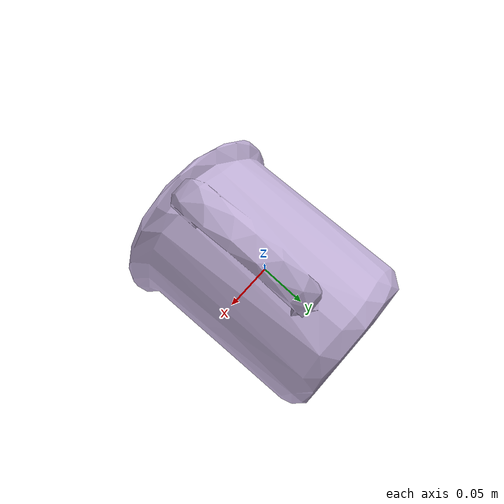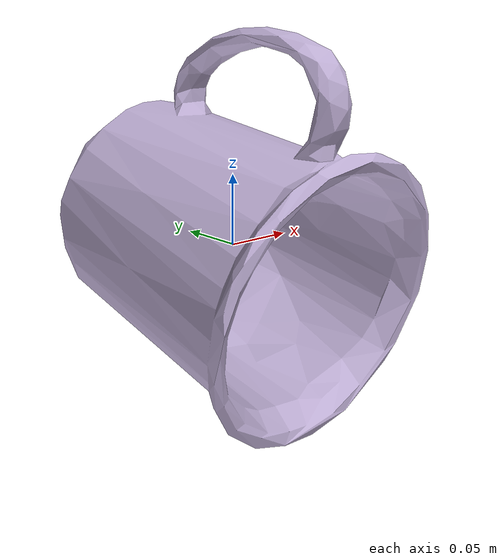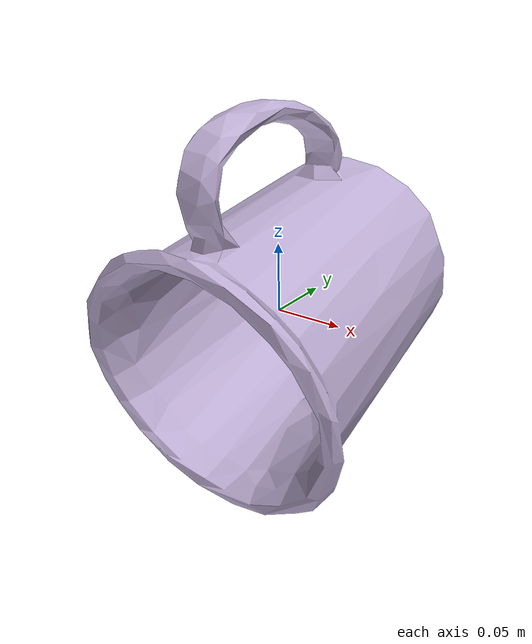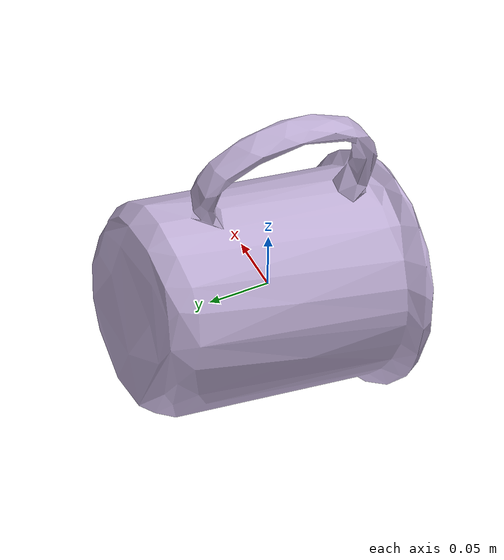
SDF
<sdf version="1.6">
  <model name="mug3_1">
    <link name="link">
      <pose frame="">-0 0 0.005 0 -0 0</pose>
      <inertial>
        <mass>0.5</mass>
        <inertia>
          <ixx>0.00018901720816666664</ixx>
          <ixy>0</ixy>
          <ixz>0</ixz>
          <iyy>0.00014008634816666665</iyy>
          <iyz>0</iyz>
          <izz>0.0001603535563333333</izz>
        </inertia>
        <pose frame="">0.0010479999999999995 0.0018369999999999986 0.0015310000000000005 1.57 0 3.14</pose>
      </inertial>
      <self_collide>0</self_collide>
      <kinematic>0</kinematic>
      <gravity>1</gravity>
      <visual name="visual">
        <geometry>
          <mesh>
            <uri>/home/zisu/simulator/siemens_challenge/sim_world/toolbox/mug3_1.dae</uri>
          </mesh>
        </geometry>
        <pose frame="">0 0 0 0 -0 0</pose>
        <transparency>0</transparency>
        <cast_shadows>0</cast_shadows>
      </visual>
      <collision name="collision">
        <laser_retro>0</laser_retro>
        <max_contacts>10</max_contacts>
        <pose frame="">0.0010479999999999995 0.0018369999999999986 0.0015310000000000005 1.57 0 3.14</pose>
        <geometry>
          <box>
            <size>0.036566 0.050114 0.045</size>
          </box>
        </geometry>
        <surface>
          <friction>
            <ode>
              <mu>1</mu>
              <mu2>1</mu2>
              <fdir1>0 0 0</fdir1>
              <slip1>0</slip1>
              <slip2>0</slip2>
            </ode>
            <torsional>
              <coefficient>1</coefficient>
              <patch_radius>0</patch_radius>
              <surface_radius>0.05</surface_radius>
              <use_patch_radius>0</use_patch_radius>
              <ode>
                <slip>0</slip>
              </ode>
            </torsional>
          </friction>
          <bounce>
            <restitution_coefficient>0</restitution_coefficient>
            <threshold>1e+06</threshold>
          </bounce>
          <contact>
            <collide_without_contact>0</collide_without_contact>
            <collide_without_contact_bitmask>1</collide_without_contact_bitmask>
            <collide_bitmask>1</collide_bitmask>
            <ode>
              <soft_cfm>0</soft_cfm>
              <soft_erp>0.2</soft_erp>
              <kp>100000</kp>
              <kd>1</kd>
              <max_vel>1</max_vel>
              <min_depth>0.001</min_depth>
            </ode>
            <bullet>
              <split_impulse>1</split_impulse>
              <split_impulse_penetration_threshold>-0.01</split_impulse_penetration_threshold>
              <soft_cfm>0</soft_cfm>
              <soft_erp>0.2</soft_erp>
              <kp>100000</kp>
              <kd>1</kd>
            </bullet>
          </contact>
        </surface>
      </collision>
    </link>
    <static>0</static>
    <allow_auto_disable>1</allow_auto_disable>
  </model>
</sdf>
